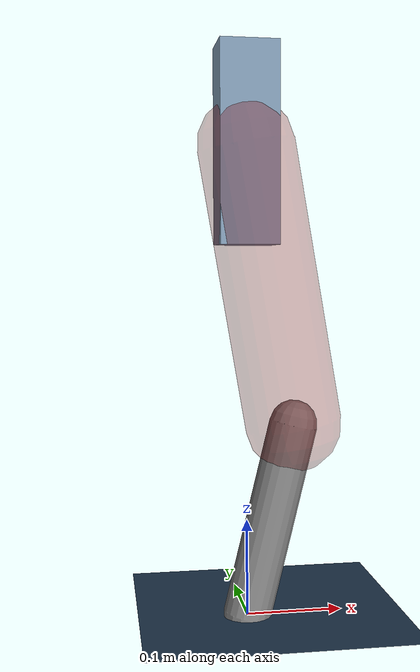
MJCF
<mujoco model="Hopper2D">
	<compiler inertiafromgeom="true" angle="radian" />
	<option timestep="0.001" integrator="implicit" cone="elliptic" solver="Newton" tolerance="1e-10" />

	<default>
		<geom contype="1" conaffinity="1" condim="3" friction="2 0.005 0.0001" solref="0.005 1" />
		<joint limited="true" damping="0.1" />
	</default>

	<asset>
		<texture name="skybox" type="skybox" builtin="gradient" rgb1=".4 .6 .8" rgb2="0 0 0" width="800" height="800" />
		<texture name="grid" type="2d" builtin="checker" rgb1=".1 .2 .3" rgb2=".2 .3 .4" width="300" height="300" mark="edge" markrgb=".2 .3 .4" />
		<material name="ground" texture="grid" texrepeat="1 1" texuniform="true" reflectance="0.1" />
		<material name="leg" rgba="0.5 0.6 0.7 1" />
	</asset>

	<worldbody>

		<geom name="floor" type="plane" size="5 5 0.25" material="ground" />

		<light directional="false" diffuse="0.8 0.8 0.8" specular="0.3 0.3 0.3" pos="0 0 2" dir="0 0 -1" />
		<light mode="targetbodycom" target="base" directional="false" diffuse="0.8 0.8 0.8" specular="0.3 0.3 0.3" pos="0 0 2" dir="0 0 -1" />

		<camera name="fixed" pos="0 -2 1" xyaxes="1 0 0 0 0 1" />
		<camera name="tracking" mode="trackcom" pos="0 -3 1" />

		<body name="root" pos="0 0 0.48355592374334555">
			<joint name="slide_x" type="slide" axis="1 0 0" range="-100 100" />
			<joint name="slide_z" type="slide" axis="0 0 1" range="0 10" />

			<body name="base" pos="0 0 0">
				<geom name="torso" type="box" size="0.03 0.03 0.1" mass="1.9529999999999998" material="leg" />

				<body name="link1" pos="0 0 0" euler="0 1.4012304888889224 0">
					<joint type="hinge" axis="0 -1 0" pos="0 0 0" name="hinge1" limited="true" range="-3.14 3.14" stiffness="0" damping="0.1" />
					<geom name="thigh" type="capsule" fromto="0 0 0 0.288487216361042 0 0" size="0.05" rgba="0.5 0 0 0.3" mass="0.9577667625387093" />

					<body name="link2" pos="0.288487216361042 0 0" euler="0 0.40925521973367024 0">
						<joint type="hinge" axis="0 -1 0" pos="0 0 0" name="hinge2" limited="true" range="-3.14 3.14" stiffness="0" damping="0.1" />
						<geom name="shank" type="capsule" fromto="0 0 0 0.2050687073823035 0 0" size="0.025" mass="0.4051549659058428" />

					</body>
				</body>
			</body>
		</body>
	</worldbody>

	<actuator>
		<motor name="torque1" joint="hinge1" ctrlrange="-50.72215137958956 50.72215137958956" ctrllimited="true" gear="1" />
		<motor name="torque2" joint="hinge2" ctrlrange="-49.08654452503589 49.08654452503589" ctrllimited="true" gear="1" />
	</actuator>
</mujoco>
